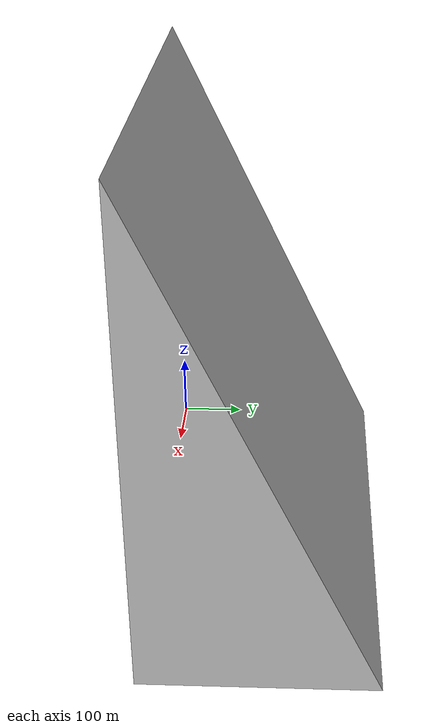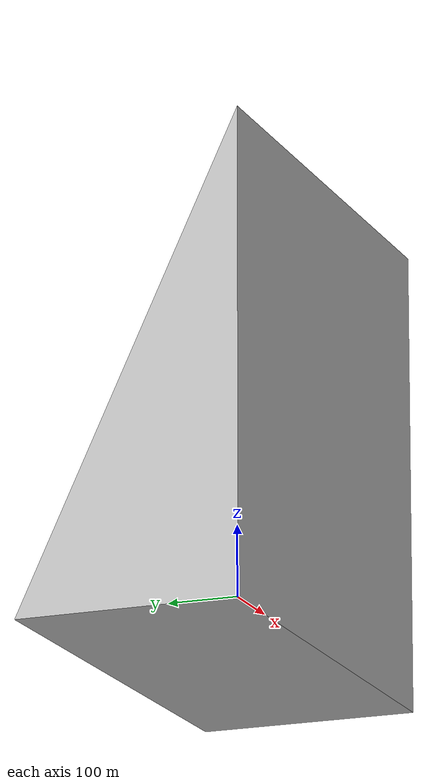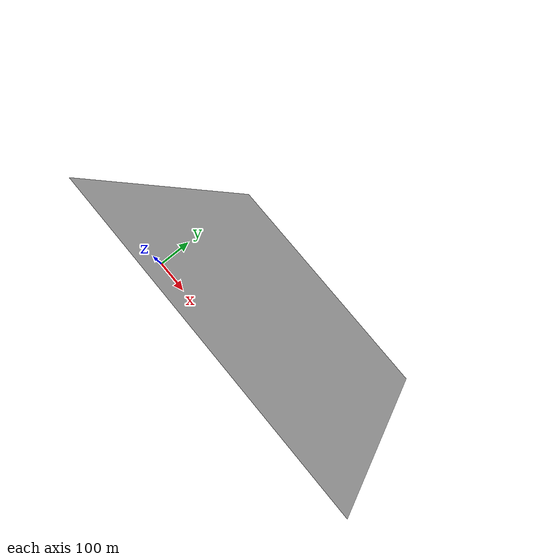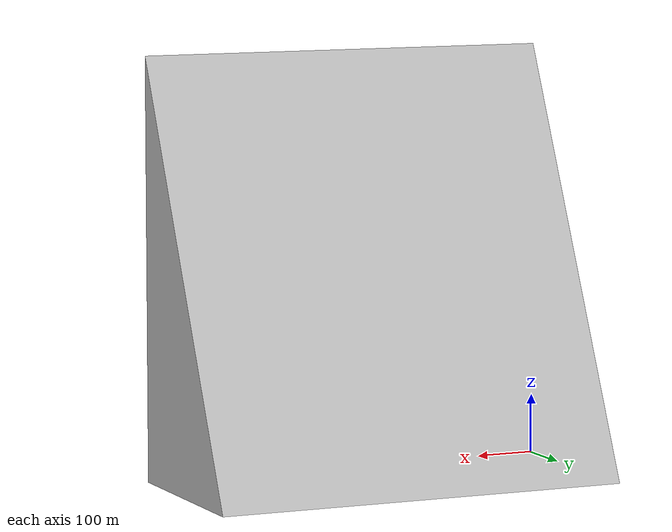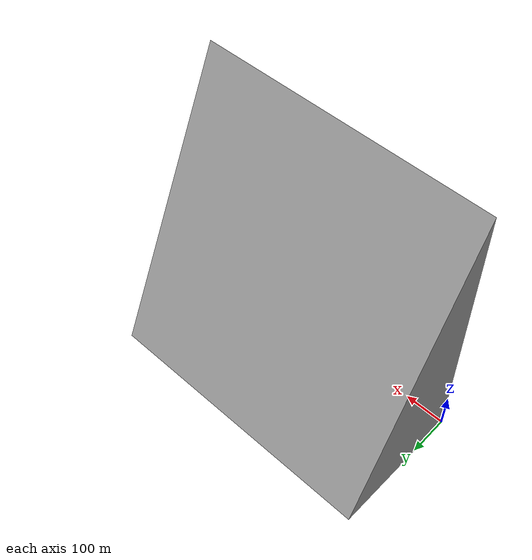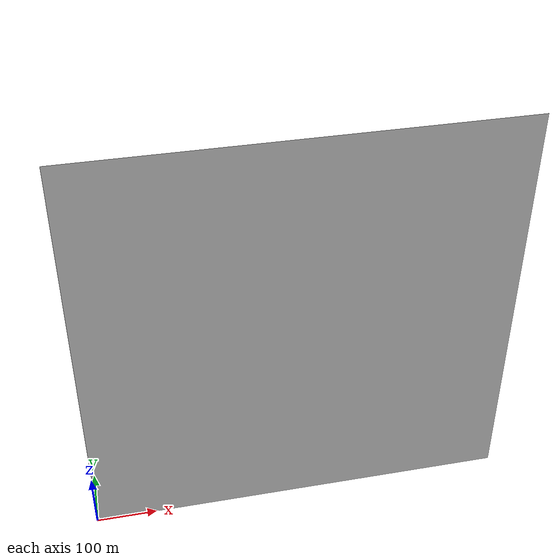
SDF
<?xml version='1.0'?>
<sdf version='1.5'>
  <model name="Tilt2">
    <pose>0 0 0.5 0 0 0</pose>
    <static>true</static>
    <link name="link">
      <collision name="collision">
        <geometry>
          <mesh>
            <uri>model://tilts/meshes/tillt2.stl</uri>
            <scale>1 1 1</scale>
          </mesh>
        </geometry>
      </collision>

      <visual name="visual">
        <geometry>
          <mesh>
            <uri>model://tilts/meshes/tillt2.stl</uri>
            <scale>1 1 1</scale>
          </mesh>
        </geometry>
      </visual>

    </link>
  </model>
</sdf>
